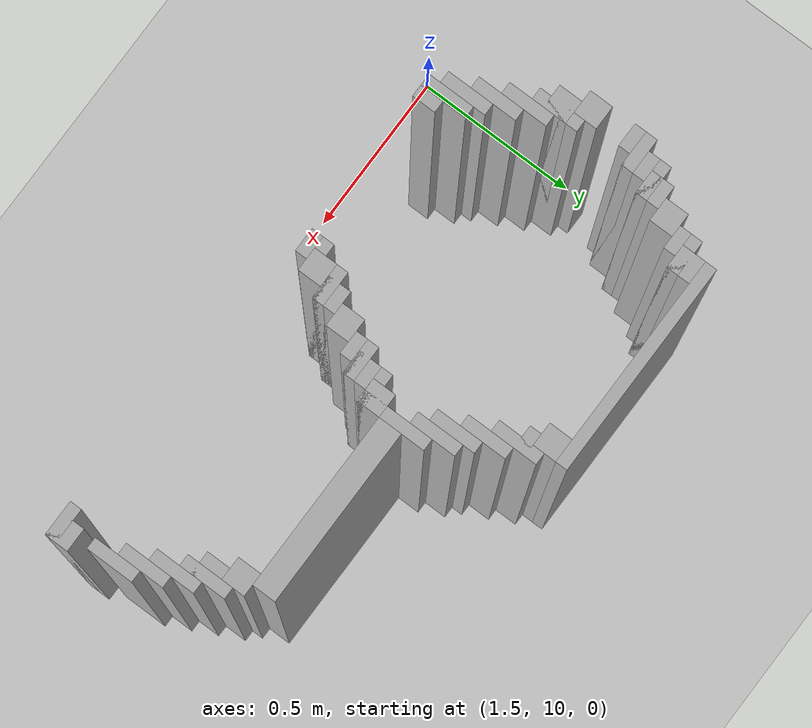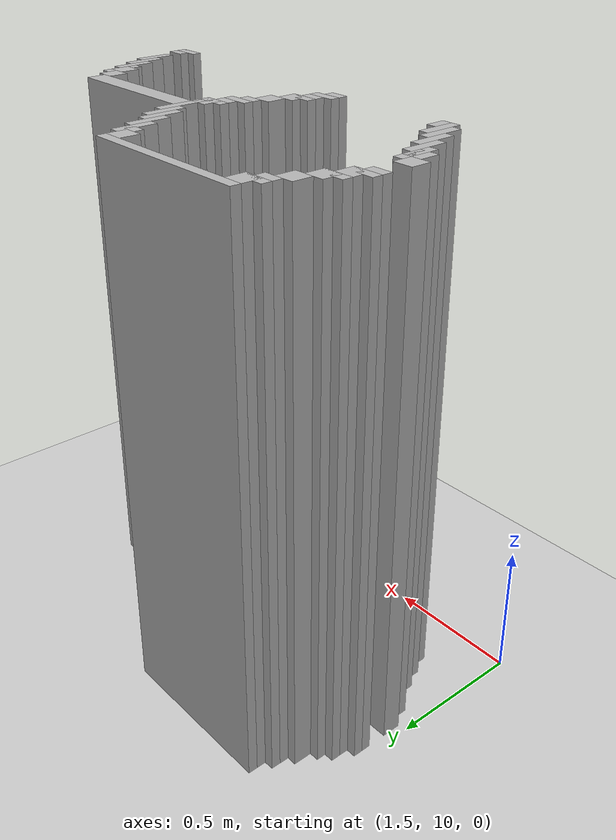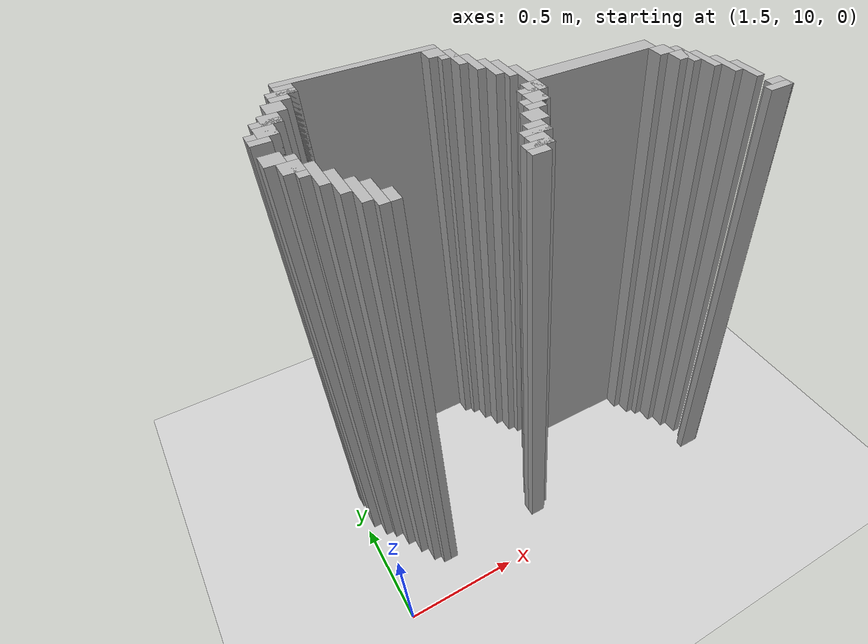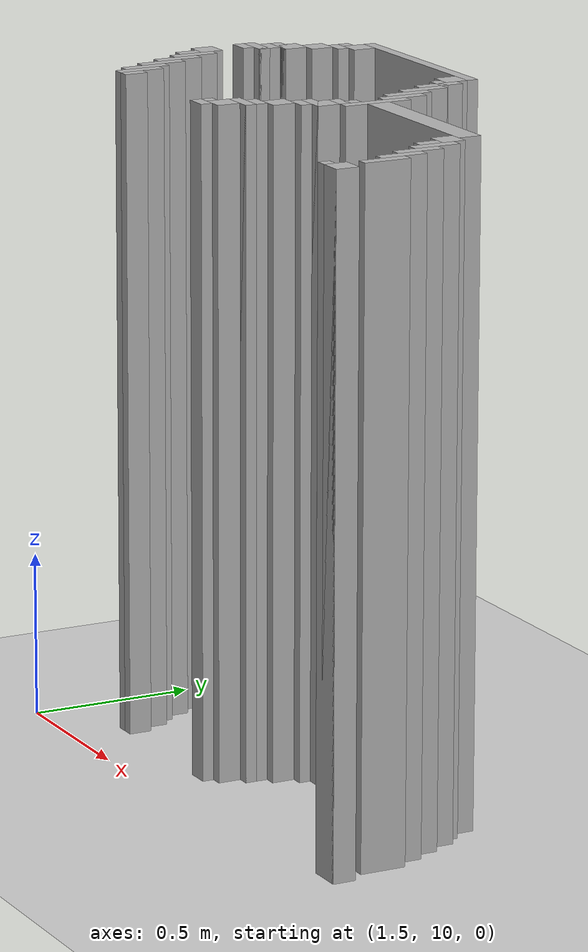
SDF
<sdf version="1.6">
 <world name="slam_world">
  <model name="ground_plane">
   <static>true</static>
   <link name="link">
    <collision name="collision">
     <geometry><plane><normal>0 0 1</normal><size>100 100</size></plane></geometry>
    </collision>
    <visual name="visual">
     <geometry><plane><normal>0 0 1</normal><size>100 100</size></plane></geometry>
     <material>
      <ambient>0.8 0.8 0.8 1</ambient>
      <diffuse>0.8 0.8 0.8 1</diffuse>
      <specular>0.8 0.8 0.8 1</specular>
     </material>
    </visual>
   </link>
  </model>
  <model name="wall_2105">
   <static>true</static>
   <pose>2.0185614849187936 11.01508120649652 1.0 0 0 0</pose>
   <link name="link">
    <collision name="collision">
     <geometry><box><size>0.6264501160092807 0.03480278422273782 2.0</size></box></geometry>
    </collision>
    <visual name="visual">
     <geometry><box><size>0.6264501160092807 0.03480278422273782 2.0</size></box></geometry>
     <material><ambient>0.5 0.5 0.5 1</ambient><diffuse>0.7 0.7 0.7 1</diffuse></material>
    </visual>
   </link>
  </model>
  <model name="wall_2115">
   <static>true</static>
   <pose>1.740139211136891 10.962877030162412 1.0 0 0 0</pose>
   <link name="link">
    <collision name="collision">
     <geometry><box><size>0.06960556844547564 0.06960556844547564 2.0</size></box></geometry>
    </collision>
    <visual name="visual">
     <geometry><box><size>0.06960556844547564 0.06960556844547564 2.0</size></box></geometry>
     <material><ambient>0.5 0.5 0.5 1</ambient><diffuse>0.7 0.7 0.7 1</diffuse></material>
    </visual>
   </link>
  </model>
  <model name="wall_2116">
   <static>true</static>
   <pose>2.296983758700696 10.962877030162412 1.0 0 0 0</pose>
   <link name="link">
    <collision name="collision">
     <geometry><box><size>0.06960556844547564 0.06960556844547564 2.0</size></box></geometry>
    </collision>
    <visual name="visual">
     <geometry><box><size>0.06960556844547564 0.06960556844547564 2.0</size></box></geometry>
     <material><ambient>0.5 0.5 0.5 1</ambient><diffuse>0.7 0.7 0.7 1</diffuse></material>
    </visual>
   </link>
  </model>
  <model name="wall_2128">
   <static>true</static>
   <pose>1.722737819025522 10.945475638051043 1.0 0 0 0</pose>
   <link name="link">
    <collision name="collision">
     <geometry><box><size>0.10440835266821345 0.03480278422273782 2.0</size></box></geometry>
    </collision>
    <visual name="visual">
     <geometry><box><size>0.10440835266821345 0.03480278422273782 2.0</size></box></geometry>
     <material><ambient>0.5 0.5 0.5 1</ambient><diffuse>0.7 0.7 0.7 1</diffuse></material>
    </visual>
   </link>
  </model>
  <model name="wall_2129">
   <static>true</static>
   <pose>2.3491879350348026 10.893271461716937 1.0 0 0 0</pose>
   <link name="link">
    <collision name="collision">
     <geometry><box><size>0.03480278422273782 0.13921113689095127 2.0</size></box></geometry>
    </collision>
    <visual name="visual">
     <geometry><box><size>0.03480278422273782 0.13921113689095127 2.0</size></box></geometry>
     <material><ambient>0.5 0.5 0.5 1</ambient><diffuse>0.7 0.7 0.7 1</diffuse></material>
    </visual>
   </link>
  </model>
  <model name="wall_2141">
   <static>true</static>
   <pose>1.705336426914153 10.910672853828306 1.0 0 0 0</pose>
   <link name="link">
    <collision name="collision">
     <geometry><box><size>0.06960556844547564 0.03480278422273782 2.0</size></box></geometry>
    </collision>
    <visual name="visual">
     <geometry><box><size>0.06960556844547564 0.03480278422273782 2.0</size></box></geometry>
     <material><ambient>0.5 0.5 0.5 1</ambient><diffuse>0.7 0.7 0.7 1</diffuse></material>
    </visual>
   </link>
  </model>
  <model name="wall_2142">
   <static>true</static>
   <pose>2.331786542923434 10.910672853828306 1.0 0 0 0</pose>
   <link name="link">
    <collision name="collision">
     <geometry><box><size>0.06960556844547564 0.03480278422273782 2.0</size></box></geometry>
    </collision>
    <visual name="visual">
     <geometry><box><size>0.06960556844547564 0.03480278422273782 2.0</size></box></geometry>
     <material><ambient>0.5 0.5 0.5 1</ambient><diffuse>0.7 0.7 0.7 1</diffuse></material>
    </visual>
   </link>
  </model>
  <model name="wall_2151">
   <static>true</static>
   <pose>1.6705336426914152 10.8584686774942 1.0 0 0 0</pose>
   <link name="link">
    <collision name="collision">
     <geometry><box><size>0.06960556844547564 0.06960556844547564 2.0</size></box></geometry>
    </collision>
    <visual name="visual">
     <geometry><box><size>0.06960556844547564 0.06960556844547564 2.0</size></box></geometry>
     <material><ambient>0.5 0.5 0.5 1</ambient><diffuse>0.7 0.7 0.7 1</diffuse></material>
    </visual>
   </link>
  </model>
  <model name="wall_2152">
   <static>true</static>
   <pose>2.3839907192575405 10.82366589327146 1.0 0 0 0</pose>
   <link name="link">
    <collision name="collision">
     <geometry><box><size>0.03480278422273782 0.13921113689095127 2.0</size></box></geometry>
    </collision>
    <visual name="visual">
     <geometry><box><size>0.03480278422273782 0.13921113689095127 2.0</size></box></geometry>
     <material><ambient>0.5 0.5 0.5 1</ambient><diffuse>0.7 0.7 0.7 1</diffuse></material>
    </visual>
   </link>
  </model>
  <model name="wall_2164">
   <static>true</static>
   <pose>1.6357308584686774 10.788863109048723 1.0 0 0 0</pose>
   <link name="link">
    <collision name="collision">
     <geometry><box><size>0.06960556844547564 0.06960556844547564 2.0</size></box></geometry>
    </collision>
    <visual name="visual">
     <geometry><box><size>0.06960556844547564 0.06960556844547564 2.0</size></box></geometry>
     <material><ambient>0.5 0.5 0.5 1</ambient><diffuse>0.7 0.7 0.7 1</diffuse></material>
    </visual>
   </link>
  </model>
  <model name="wall_2165">
   <static>true</static>
   <pose>2.4187935034802783 10.754060324825986 1.0 0 0 0</pose>
   <link name="link">
    <collision name="collision">
     <geometry><box><size>0.03480278422273782 0.13921113689095127 2.0</size></box></geometry>
    </collision>
    <visual name="visual">
     <geometry><box><size>0.03480278422273782 0.13921113689095127 2.0</size></box></geometry>
     <material><ambient>0.5 0.5 0.5 1</ambient><diffuse>0.7 0.7 0.7 1</diffuse></material>
    </visual>
   </link>
  </model>
  <model name="wall_2177">
   <static>true</static>
   <pose>1.6183294663573085 10.771461716937354 1.0 0 0 0</pose>
   <link name="link">
    <collision name="collision">
     <geometry><box><size>0.10440835266821345 0.03480278422273782 2.0</size></box></geometry>
    </collision>
    <visual name="visual">
     <geometry><box><size>0.10440835266821345 0.03480278422273782 2.0</size></box></geometry>
     <material><ambient>0.5 0.5 0.5 1</ambient><diffuse>0.7 0.7 0.7 1</diffuse></material>
    </visual>
   </link>
  </model>
  <model name="wall_2178">
   <static>true</static>
   <pose>2.453596287703016 10.719257540603248 1.0 0 0 0</pose>
   <link name="link">
    <collision name="collision">
     <geometry><box><size>0.03480278422273782 0.13921113689095127 2.0</size></box></geometry>
    </collision>
    <visual name="visual">
     <geometry><box><size>0.03480278422273782 0.13921113689095127 2.0</size></box></geometry>
     <material><ambient>0.5 0.5 0.5 1</ambient><diffuse>0.7 0.7 0.7 1</diffuse></material>
    </visual>
   </link>
  </model>
  <model name="wall_2190">
   <static>true</static>
   <pose>1.6009280742459395 10.719257540603248 1.0 0 0 0</pose>
   <link name="link">
    <collision name="collision">
     <geometry><box><size>0.06960556844547564 0.06960556844547564 2.0</size></box></geometry>
    </collision>
    <visual name="visual">
     <geometry><box><size>0.06960556844547564 0.06960556844547564 2.0</size></box></geometry>
     <material><ambient>0.5 0.5 0.5 1</ambient><diffuse>0.7 0.7 0.7 1</diffuse></material>
    </visual>
   </link>
  </model>
  <model name="wall_2197">
   <static>true</static>
   <pose>1.5835266821345706 10.70185614849188 1.0 0 0 0</pose>
   <link name="link">
    <collision name="collision">
     <geometry><box><size>0.10440835266821345 0.03480278422273782 2.0</size></box></geometry>
    </collision>
    <visual name="visual">
     <geometry><box><size>0.10440835266821345 0.03480278422273782 2.0</size></box></geometry>
     <material><ambient>0.5 0.5 0.5 1</ambient><diffuse>0.7 0.7 0.7 1</diffuse></material>
    </visual>
   </link>
  </model>
  <model name="wall_2198">
   <static>true</static>
   <pose>2.488399071925754 10.614849187935034 1.0 0 0 0</pose>
   <link name="link">
    <collision name="collision">
     <geometry><box><size>0.03480278422273782 0.2088167053364269 2.0</size></box></geometry>
    </collision>
    <visual name="visual">
     <geometry><box><size>0.03480278422273782 0.2088167053364269 2.0</size></box></geometry>
     <material><ambient>0.5 0.5 0.5 1</ambient><diffuse>0.7 0.7 0.7 1</diffuse></material>
    </visual>
   </link>
  </model>
  <model name="wall_2210">
   <static>true</static>
   <pose>1.5661252900232019 10.66705336426914 1.0 0 0 0</pose>
   <link name="link">
    <collision name="collision">
     <geometry><box><size>0.06960556844547564 0.03480278422273782 2.0</size></box></geometry>
    </collision>
    <visual name="visual">
     <geometry><box><size>0.06960556844547564 0.03480278422273782 2.0</size></box></geometry>
     <material><ambient>0.5 0.5 0.5 1</ambient><diffuse>0.7 0.7 0.7 1</diffuse></material>
    </visual>
   </link>
  </model>
  <model name="wall_2218">
   <static>true</static>
   <pose>2.7668213457076565 10.614849187935034 1.0 0 0 0</pose>
   <link name="link">
    <collision name="collision">
     <geometry><box><size>0.5220417633410672 0.06960556844547564 2.0</size></box></geometry>
    </collision>
    <visual name="visual">
     <geometry><box><size>0.5220417633410672 0.06960556844547564 2.0</size></box></geometry>
     <material><ambient>0.5 0.5 0.5 1</ambient><diffuse>0.7 0.7 0.7 1</diffuse></material>
    </visual>
   </link>
  </model>
  <model name="wall_2236">
   <static>true</static>
   <pose>1.5661252900232019 10.54524361948956 1.0 0 0 0</pose>
   <link name="link">
    <collision name="collision">
     <geometry><box><size>0.06960556844547564 0.06960556844547564 2.0</size></box></geometry>
    </collision>
    <visual name="visual">
     <geometry><box><size>0.06960556844547564 0.06960556844547564 2.0</size></box></geometry>
     <material><ambient>0.5 0.5 0.5 1</ambient><diffuse>0.7 0.7 0.7 1</diffuse></material>
    </visual>
   </link>
  </model>
  <model name="wall_2237">
   <static>true</static>
   <pose>2.470997679814385 10.54524361948956 1.0 0 0 0</pose>
   <link name="link">
    <collision name="collision">
     <geometry><box><size>0.06960556844547564 0.06960556844547564 2.0</size></box></geometry>
    </collision>
    <visual name="visual">
     <geometry><box><size>0.06960556844547564 0.06960556844547564 2.0</size></box></geometry>
     <material><ambient>0.5 0.5 0.5 1</ambient><diffuse>0.7 0.7 0.7 1</diffuse></material>
    </visual>
   </link>
  </model>
  <model name="wall_2238">
   <static>true</static>
   <pose>3.02784222737819 10.54524361948956 1.0 0 0 0</pose>
   <link name="link">
    <collision name="collision">
     <geometry><box><size>0.06960556844547564 0.06960556844547564 2.0</size></box></geometry>
    </collision>
    <visual name="visual">
     <geometry><box><size>0.06960556844547564 0.06960556844547564 2.0</size></box></geometry>
     <material><ambient>0.5 0.5 0.5 1</ambient><diffuse>0.7 0.7 0.7 1</diffuse></material>
    </visual>
   </link>
  </model>
  <model name="wall_2253">
   <static>true</static>
   <pose>1.6183294663573085 10.475638051044083 1.0 0 0 0</pose>
   <link name="link">
    <collision name="collision">
     <geometry><box><size>0.03480278422273782 0.13921113689095127 2.0</size></box></geometry>
    </collision>
    <visual name="visual">
     <geometry><box><size>0.03480278422273782 0.13921113689095127 2.0</size></box></geometry>
     <material><ambient>0.5 0.5 0.5 1</ambient><diffuse>0.7 0.7 0.7 1</diffuse></material>
    </visual>
   </link>
  </model>
  <model name="wall_2254">
   <static>true</static>
   <pose>2.453596287703016 10.52784222737819 1.0 0 0 0</pose>
   <link name="link">
    <collision name="collision">
     <geometry><box><size>0.10440835266821345 0.03480278422273782 2.0</size></box></geometry>
    </collision>
    <visual name="visual">
     <geometry><box><size>0.10440835266821345 0.03480278422273782 2.0</size></box></geometry>
     <material><ambient>0.5 0.5 0.5 1</ambient><diffuse>0.7 0.7 0.7 1</diffuse></material>
    </visual>
   </link>
  </model>
  <model name="wall_2255">
   <static>true</static>
   <pose>3.0800464037122968 10.475638051044083 1.0 0 0 0</pose>
   <link name="link">
    <collision name="collision">
     <geometry><box><size>0.03480278422273782 0.13921113689095127 2.0</size></box></geometry>
    </collision>
    <visual name="visual">
     <geometry><box><size>0.03480278422273782 0.13921113689095127 2.0</size></box></geometry>
     <material><ambient>0.5 0.5 0.5 1</ambient><diffuse>0.7 0.7 0.7 1</diffuse></material>
    </visual>
   </link>
  </model>
  <model name="wall_2270">
   <static>true</static>
   <pose>1.6009280742459395 10.475638051044083 1.0 0 0 0</pose>
   <link name="link">
    <collision name="collision">
     <geometry><box><size>0.06960556844547564 0.06960556844547564 2.0</size></box></geometry>
    </collision>
    <visual name="visual">
     <geometry><box><size>0.06960556844547564 0.06960556844547564 2.0</size></box></geometry>
     <material><ambient>0.5 0.5 0.5 1</ambient><diffuse>0.7 0.7 0.7 1</diffuse></material>
    </visual>
   </link>
  </model>
  <model name="wall_2271">
   <static>true</static>
   <pose>2.436194895591647 10.475638051044083 1.0 0 0 0</pose>
   <link name="link">
    <collision name="collision">
     <geometry><box><size>0.06960556844547564 0.06960556844547564 2.0</size></box></geometry>
    </collision>
    <visual name="visual">
     <geometry><box><size>0.06960556844547564 0.06960556844547564 2.0</size></box></geometry>
     <material><ambient>0.5 0.5 0.5 1</ambient><diffuse>0.7 0.7 0.7 1</diffuse></material>
    </visual>
   </link>
  </model>
  <model name="wall_2272">
   <static>true</static>
   <pose>3.062645011600928 10.475638051044083 1.0 0 0 0</pose>
   <link name="link">
    <collision name="collision">
     <geometry><box><size>0.06960556844547564 0.06960556844547564 2.0</size></box></geometry>
    </collision>
    <visual name="visual">
     <geometry><box><size>0.06960556844547564 0.06960556844547564 2.0</size></box></geometry>
     <material><ambient>0.5 0.5 0.5 1</ambient><diffuse>0.7 0.7 0.7 1</diffuse></material>
    </visual>
   </link>
  </model>
  <model name="wall_2287">
   <static>true</static>
   <pose>1.6531322505800463 10.406032482598608 1.0 0 0 0</pose>
   <link name="link">
    <collision name="collision">
     <geometry><box><size>0.03480278422273782 0.13921113689095127 2.0</size></box></geometry>
    </collision>
    <visual name="visual">
     <geometry><box><size>0.03480278422273782 0.13921113689095127 2.0</size></box></geometry>
     <material><ambient>0.5 0.5 0.5 1</ambient><diffuse>0.7 0.7 0.7 1</diffuse></material>
    </visual>
   </link>
  </model>
  <model name="wall_2288">
   <static>true</static>
   <pose>2.4187935034802783 10.458236658932714 1.0 0 0 0</pose>
   <link name="link">
    <collision name="collision">
     <geometry><box><size>0.10440835266821345 0.03480278422273782 2.0</size></box></geometry>
    </collision>
    <visual name="visual">
     <geometry><box><size>0.10440835266821345 0.03480278422273782 2.0</size></box></geometry>
     <material><ambient>0.5 0.5 0.5 1</ambient><diffuse>0.7 0.7 0.7 1</diffuse></material>
    </visual>
   </link>
  </model>
  <model name="wall_2289">
   <static>true</static>
   <pose>3.1148491879350346 10.406032482598608 1.0 0 0 0</pose>
   <link name="link">
    <collision name="collision">
     <geometry><box><size>0.03480278422273782 0.13921113689095127 2.0</size></box></geometry>
    </collision>
    <visual name="visual">
     <geometry><box><size>0.03480278422273782 0.13921113689095127 2.0</size></box></geometry>
     <material><ambient>0.5 0.5 0.5 1</ambient><diffuse>0.7 0.7 0.7 1</diffuse></material>
    </visual>
   </link>
  </model>
  <model name="wall_2303">
   <static>true</static>
   <pose>2.4013921113689096 10.423433874709977 1.0 0 0 0</pose>
   <link name="link">
    <collision name="collision">
     <geometry><box><size>0.06960556844547564 0.03480278422273782 2.0</size></box></geometry>
    </collision>
    <visual name="visual">
     <geometry><box><size>0.06960556844547564 0.03480278422273782 2.0</size></box></geometry>
     <material><ambient>0.5 0.5 0.5 1</ambient><diffuse>0.7 0.7 0.7 1</diffuse></material>
    </visual>
   </link>
  </model>
  <model name="wall_2312">
   <static>true</static>
   <pose>1.6879350348027842 10.336426914153131 1.0 0 0 0</pose>
   <link name="link">
    <collision name="collision">
     <geometry><box><size>0.03480278422273782 0.13921113689095127 2.0</size></box></geometry>
    </collision>
    <visual name="visual">
     <geometry><box><size>0.03480278422273782 0.13921113689095127 2.0</size></box></geometry>
     <material><ambient>0.5 0.5 0.5 1</ambient><diffuse>0.7 0.7 0.7 1</diffuse></material>
    </visual>
   </link>
  </model>
  <model name="wall_2313">
   <static>true</static>
   <pose>2.3665893271461718 10.37122969837587 1.0 0 0 0</pose>
   <link name="link">
    <collision name="collision">
     <geometry><box><size>0.06960556844547564 0.06960556844547564 2.0</size></box></geometry>
    </collision>
    <visual name="visual">
     <geometry><box><size>0.06960556844547564 0.06960556844547564 2.0</size></box></geometry>
     <material><ambient>0.5 0.5 0.5 1</ambient><diffuse>0.7 0.7 0.7 1</diffuse></material>
    </visual>
   </link>
  </model>
  <model name="wall_2314">
   <static>true</static>
   <pose>3.1496519721577725 10.336426914153131 1.0 0 0 0</pose>
   <link name="link">
    <collision name="collision">
     <geometry><box><size>0.03480278422273782 0.13921113689095127 2.0</size></box></geometry>
    </collision>
    <visual name="visual">
     <geometry><box><size>0.03480278422273782 0.13921113689095127 2.0</size></box></geometry>
     <material><ambient>0.5 0.5 0.5 1</ambient><diffuse>0.7 0.7 0.7 1</diffuse></material>
    </visual>
   </link>
  </model>
  <model name="wall_2329">
   <static>true</static>
   <pose>1.722737819025522 10.266821345707656 1.0 0 0 0</pose>
   <link name="link">
    <collision name="collision">
     <geometry><box><size>0.03480278422273782 0.13921113689095127 2.0</size></box></geometry>
    </collision>
    <visual name="visual">
     <geometry><box><size>0.03480278422273782 0.13921113689095127 2.0</size></box></geometry>
     <material><ambient>0.5 0.5 0.5 1</ambient><diffuse>0.7 0.7 0.7 1</diffuse></material>
    </visual>
   </link>
  </model>
  <model name="wall_2330">
   <static>true</static>
   <pose>2.331786542923434 10.301624129930394 1.0 0 0 0</pose>
   <link name="link">
    <collision name="collision">
     <geometry><box><size>0.06960556844547564 0.06960556844547564 2.0</size></box></geometry>
    </collision>
    <visual name="visual">
     <geometry><box><size>0.06960556844547564 0.06960556844547564 2.0</size></box></geometry>
     <material><ambient>0.5 0.5 0.5 1</ambient><diffuse>0.7 0.7 0.7 1</diffuse></material>
    </visual>
   </link>
  </model>
  <model name="wall_2331">
   <static>true</static>
   <pose>3.1844547563805103 10.266821345707656 1.0 0 0 0</pose>
   <link name="link">
    <collision name="collision">
     <geometry><box><size>0.03480278422273782 0.13921113689095127 2.0</size></box></geometry>
    </collision>
    <visual name="visual">
     <geometry><box><size>0.03480278422273782 0.13921113689095127 2.0</size></box></geometry>
     <material><ambient>0.5 0.5 0.5 1</ambient><diffuse>0.7 0.7 0.7 1</diffuse></material>
    </visual>
   </link>
  </model>
  <model name="wall_2346">
   <static>true</static>
   <pose>1.75754060324826 10.232018561484919 1.0 0 0 0</pose>
   <link name="link">
    <collision name="collision">
     <geometry><box><size>0.03480278422273782 0.13921113689095127 2.0</size></box></geometry>
    </collision>
    <visual name="visual">
     <geometry><box><size>0.03480278422273782 0.13921113689095127 2.0</size></box></geometry>
     <material><ambient>0.5 0.5 0.5 1</ambient><diffuse>0.7 0.7 0.7 1</diffuse></material>
    </visual>
   </link>
  </model>
  <model name="wall_2347">
   <static>true</static>
   <pose>2.3143851508120648 10.284222737819025 1.0 0 0 0</pose>
   <link name="link">
    <collision name="collision">
     <geometry><box><size>0.10440835266821345 0.03480278422273782 2.0</size></box></geometry>
    </collision>
    <visual name="visual">
     <geometry><box><size>0.10440835266821345 0.03480278422273782 2.0</size></box></geometry>
     <material><ambient>0.5 0.5 0.5 1</ambient><diffuse>0.7 0.7 0.7 1</diffuse></material>
    </visual>
   </link>
  </model>
  <model name="wall_2362">
   <static>true</static>
   <pose>2.296983758700696 10.232018561484919 1.0 0 0 0</pose>
   <link name="link">
    <collision name="collision">
     <geometry><box><size>0.06960556844547564 0.06960556844547564 2.0</size></box></geometry>
    </collision>
    <visual name="visual">
     <geometry><box><size>0.06960556844547564 0.06960556844547564 2.0</size></box></geometry>
     <material><ambient>0.5 0.5 0.5 1</ambient><diffuse>0.7 0.7 0.7 1</diffuse></material>
    </visual>
   </link>
  </model>
  <model name="wall_2370">
   <static>true</static>
   <pose>1.7923433874709975 10.19721577726218 1.0 0 0 0</pose>
   <link name="link">
    <collision name="collision">
     <geometry><box><size>0.03480278422273782 0.06960556844547564 2.0</size></box></geometry>
    </collision>
    <visual name="visual">
     <geometry><box><size>0.03480278422273782 0.06960556844547564 2.0</size></box></geometry>
     <material><ambient>0.5 0.5 0.5 1</ambient><diffuse>0.7 0.7 0.7 1</diffuse></material>
    </visual>
   </link>
  </model>
  <model name="wall_2371">
   <static>true</static>
   <pose>2.279582366589327 10.214617169373549 1.0 0 0 0</pose>
   <link name="link">
    <collision name="collision">
     <geometry><box><size>0.10440835266821345 0.03480278422273782 2.0</size></box></geometry>
    </collision>
    <visual name="visual">
     <geometry><box><size>0.10440835266821345 0.03480278422273782 2.0</size></box></geometry>
     <material><ambient>0.5 0.5 0.5 1</ambient><diffuse>0.7 0.7 0.7 1</diffuse></material>
    </visual>
   </link>
  </model>
  <model name="wall_2383">
   <static>true</static>
   <pose>2.262180974477958 10.179814385150811 1.0 0 0 0</pose>
   <link name="link">
    <collision name="collision">
     <geometry><box><size>0.06960556844547564 0.03480278422273782 2.0</size></box></geometry>
    </collision>
    <visual name="visual">
     <geometry><box><size>0.06960556844547564 0.03480278422273782 2.0</size></box></geometry>
     <material><ambient>0.5 0.5 0.5 1</ambient><diffuse>0.7 0.7 0.7 1</diffuse></material>
    </visual>
   </link>
  </model>
  <model name="wall_2392">
   <static>true</static>
   <pose>3.201856148491879 10.127610208816705 1.0 0 0 0</pose>
   <link name="link">
    <collision name="collision">
     <geometry><box><size>0.06960556844547564 0.06960556844547564 2.0</size></box></geometry>
    </collision>
    <visual name="visual">
     <geometry><box><size>0.06960556844547564 0.06960556844547564 2.0</size></box></geometry>
     <material><ambient>0.5 0.5 0.5 1</ambient><diffuse>0.7 0.7 0.7 1</diffuse></material>
    </visual>
   </link>
  </model>
  <model name="wall_2408">
   <static>true</static>
   <pose>3.1844547563805103 10.110208816705336 1.0 0 0 0</pose>
   <link name="link">
    <collision name="collision">
     <geometry><box><size>0.10440835266821345 0.03480278422273782 2.0</size></box></geometry>
    </collision>
    <visual name="visual">
     <geometry><box><size>0.10440835266821345 0.03480278422273782 2.0</size></box></geometry>
     <material><ambient>0.5 0.5 0.5 1</ambient><diffuse>0.7 0.7 0.7 1</diffuse></material>
    </visual>
   </link>
  </model>
 </world>
</sdf>
